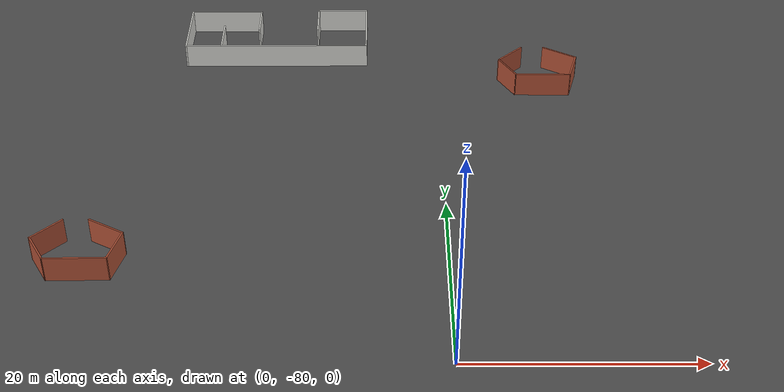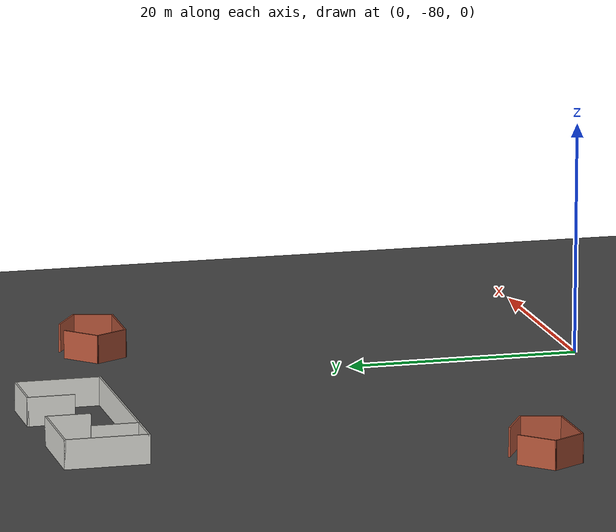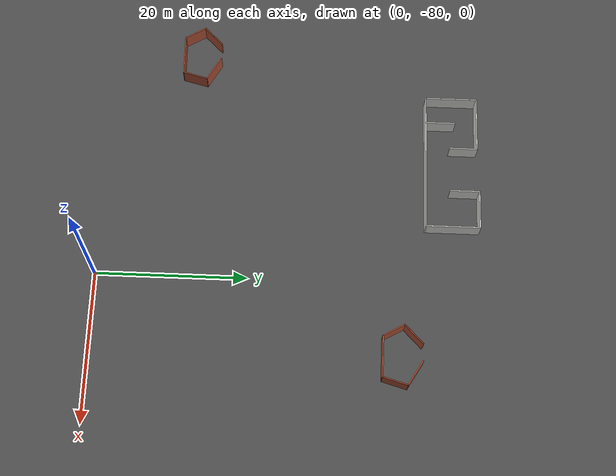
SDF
<sdf version="1.6">
 <world name="default">
  <model name="ground_plane">
   <static>1</static>
   <link name="link">
    <collision name="collision">
     <geometry><plane><normal>0 0 1</normal><size>250 250</size></plane></geometry>
     <surface><friction><ode><mu>100</mu><mu2>50</mu2></ode></friction></surface>
    </collision>
    <visual name="visual">
     <cast_shadows>0</cast_shadows>
     <geometry><plane><normal>0 0 1</normal><size>250 250</size></plane></geometry>
     <material>
      <script><uri>file://media/materials/scripts/gazebo.material</uri><name>Gazebo/Grey</name></script>
     </material>
    </visual>
   </link>
  </model>
  <model name="concrete_room2">
   <pose>-16.6663 -33.2911 0 0 -0 0</pose>
   <link name="Wall_61">
    <collision name="Wall_61_Collision">
     <geometry><box><size>5.25 0.15 2.5</size></box></geometry>
     <pose>0 0 1.25 0 -0 0</pose>
    </collision>
    <visual name="Wall_61_Visual">
     <pose>0 0 1.25 0 -0 0</pose>
     <geometry><box><size>5.25 0.15 2.5</size></box></geometry>
     <material>
      <script><uri>file://media/materials/scripts/gazebo.material</uri><name>Gazebo/CeilingTiled</name></script>
      <ambient>1 1 1 1</ambient>
     </material>
     <meta><layer>0</layer></meta>
    </visual>
    <pose>6.75 3.55 0 0 -0 0</pose>
   </link>
   <link name="Wall_62">
    <collision name="Wall_62_Collision">
     <geometry><box><size>7.25 0.15 2.5</size></box></geometry>
     <pose>0 0 1.25 0 -0 0</pose>
    </collision>
    <visual name="Wall_62_Visual">
     <pose>0 0 1.25 0 -0 0</pose>
     <geometry><box><size>7.25 0.15 2.5</size></box></geometry>
     <material>
      <script><uri>file://media/materials/scripts/gazebo.material</uri><name>Gazebo/CeilingTiled</name></script>
      <ambient>1 1 1 1</ambient>
     </material>
     <meta><layer>0</layer></meta>
    </visual>
    <pose>9.3 0 0 0 0 -1.5708</pose>
   </link>
   <link name="Wall_63">
    <collision name="Wall_63_Collision">
     <geometry><box><size>18.75 0.15 2.5</size></box></geometry>
     <pose>0 0 1.25 0 -0 0</pose>
    </collision>
    <visual name="Wall_63_Visual">
     <pose>0 0 1.25 0 -0 0</pose>
     <geometry><box><size>18.75 0.15 2.5</size></box></geometry>
     <material>
      <script><uri>file://media/materials/scripts/gazebo.material</uri><name>Gazebo/CeilingTiled</name></script>
      <ambient>1 1 1 1</ambient>
     </material>
     <meta><layer>0</layer></meta>
    </visual>
    <pose>0 -3.55 0 0 -0 3.14159</pose>
   </link>
   <link name="Wall_64">
    <collision name="Wall_64_Collision">
     <geometry><box><size>7 0.15 2.5</size></box></geometry>
     <pose>0 0 1.25 0 -0 0</pose>
    </collision>
    <visual name="Wall_64_Visual">
     <pose>0 0 1.25 0 -0 0</pose>
     <geometry><box><size>7 0.15 2.5</size></box></geometry>
     <material>
      <script><uri>file://media/materials/scripts/gazebo.material</uri><name>Gazebo/CeilingTiled</name></script>
      <ambient>1 1 1 1</ambient>
     </material>
     <meta><layer>0</layer></meta>
    </visual>
    <pose>-9.3 -0.125 0 0 -0 1.5708</pose>
   </link>
   <link name="Wall_65">
    <collision name="Wall_65_Collision">
     <geometry><box><size>7.5 0.15 2.5</size></box></geometry>
     <pose>0 0 1.25 0 -0 0</pose>
    </collision>
    <visual name="Wall_65_Visual">
     <pose>0 0 1.25 0 -0 0</pose>
     <geometry><box><size>7.5 0.15 2.5</size></box></geometry>
     <material>
      <script><uri>file://media/materials/scripts/gazebo.material</uri><name>Gazebo/CeilingTiled</name></script>
      <ambient>1 1 1 1</ambient>
     </material>
     <meta><layer>0</layer></meta>
    </visual>
    <pose>-5.625 3.3 0 0 -0 0</pose>
   </link>
   <link name="Wall_66">
    <collision name="Wall_66_Collision">
     <geometry><box><size>3.75 0.15 2.5</size></box></geometry>
     <pose>0 0 1.25 0 -0 0</pose>
    </collision>
    <visual name="Wall_66_Visual">
     <pose>0 0 1.25 0 -0 0</pose>
     <geometry><box><size>3.75 0.15 2.5</size></box></geometry>
     <material>
      <script><uri>file://media/materials/scripts/gazebo.material</uri><name>Gazebo/CeilingTiled</name></script>
      <ambient>1 1 1 1</ambient>
     </material>
     <meta><layer>0</layer></meta>
    </visual>
    <pose>-1.95 1.5 0 0 0 -1.5708</pose>
   </link>
   <link name="Wall_70">
    <collision name="Wall_70_Collision">
     <geometry><box><size>4 0.15 2.5</size></box></geometry>
     <pose>0 0 1.25 0 -0 0</pose>
    </collision>
    <visual name="Wall_70_Visual">
     <pose>0 0 1.25 0 -0 0</pose>
     <geometry><box><size>4 0.15 2.5</size></box></geometry>
     <material>
      <script><uri>file://media/materials/scripts/gazebo.material</uri><name>Gazebo/CeilingTiled</name></script>
      <ambient>1 1 1 1</ambient>
     </material>
     <meta><layer>0</layer></meta>
    </visual>
    <pose>4.2 1.625 0 0 0 -1.5708</pose>
   </link>
   <link name="Wall_72">
    <collision name="Wall_72_Collision">
     <geometry><box><size>4 0.15 2.5</size></box></geometry>
     <pose>0 0 1.25 0 -0 0</pose>
    </collision>
    <visual name="Wall_72_Visual">
     <pose>0 0 1.25 0 -0 0</pose>
     <geometry><box><size>4 0.15 2.5</size></box></geometry>
     <material>
      <script><uri>file://media/materials/scripts/gazebo.material</uri><name>Gazebo/CeilingTiled</name></script>
      <ambient>1 1 1 1</ambient>
     </material>
     <meta><layer>0</layer></meta>
    </visual>
    <pose>-5.65005 -1.59593 0 0 -0 1.5708</pose>
   </link>
   <static>1</static>
  </model>
  <model name="brick_room1_clone_clone_clone">
   <pose>-31.7858 -67.6312 0 0 0 -3.13253</pose>
   <link name="Wall_11">
    <collision name="Wall_11_Collision">
     <geometry><box><size>3.25 0.15 2.5</size></box></geometry>
     <pose>0 0 1.25 0 -0 0</pose>
    </collision>
    <visual name="Wall_11_Visual">
     <pose>0 0 1.25 0 -0 0</pose>
     <geometry><box><size>3.25 0.15 2.5</size></box></geometry>
     <material>
      <script><uri>file://media/materials/scripts/gazebo.material</uri><name>Gazebo/Bricks</name></script>
      <ambient>1 1 1 1</ambient>
     </material>
    </visual>
    <pose>3.12132 1.19483 0 0 0 -1.0472</pose>
   </link>
   <link name="Wall_12">
    <collision name="Wall_12_Collision">
     <geometry><box><size>3.5 0.15 2.5</size></box></geometry>
     <pose>0 0 1.25 0 -0 0</pose>
    </collision>
    <visual name="Wall_12_Visual">
     <pose>0 0 1.25 0 -0 0</pose>
     <geometry><box><size>3.5 0.15 2.5</size></box></geometry>
     <material>
      <script><uri>file://media/materials/scripts/gazebo.material</uri><name>Gazebo/Bricks</name></script>
      <ambient>1 1 1 1</ambient>
     </material>
    </visual>
    <pose>2.71192 -1.33192 0 0 0 -2.35619</pose>
   </link>
   <link name="Wall_7">
    <collision name="Wall_7_Collision">
     <geometry><box><size>5.52935 0.15 2.5</size></box></geometry>
     <pose>0 0 1.25 0 -0 0</pose>
    </collision>
    <visual name="Wall_7_Visual">
     <pose>0 0 1.25 0 -0 0</pose>
     <geometry><box><size>5.52935 0.15 2.5</size></box></geometry>
     <material>
      <script><uri>file://media/materials/scripts/gazebo.material</uri><name>Gazebo/Bricks</name></script>
      <ambient>1 1 1 1</ambient>
     </material>
    </visual>
    <pose>-0.343285 2.51793 0 0 0 -3.13444</pose>
   </link>
   <link name="Wall_8">
    <collision name="Wall_8_Collision">
     <geometry><box><size>3.5 0.15 2.5</size></box></geometry>
     <pose>0 0 1.25 0 -0 0</pose>
    </collision>
    <visual name="Wall_8_Visual">
     <pose>0 0 1.25 0 -0 0</pose>
     <geometry><box><size>3.5 0.15 2.5</size></box></geometry>
     <material>
      <script><uri>file://media/materials/scripts/gazebo.material</uri><name>Gazebo/Bricks</name></script>
      <ambient>1 1 1 1</ambient>
     </material>
    </visual>
    <pose>-3.46641 0.880761 0 0 0 -1.8326</pose>
   </link>
   <link name="Wall_9">
    <collision name="Wall_9_Collision">
     <geometry><box><size>3.75 0.15 2.5</size></box></geometry>
     <pose>0 0 1.25 0 -0 0</pose>
    </collision>
    <visual name="Wall_9_Visual">
     <pose>0 0 1.25 0 -0 0</pose>
     <geometry><box><size>3.75 0.15 2.5</size></box></geometry>
     <material>
      <script><uri>file://media/materials/scripts/gazebo.material</uri><name>Gazebo/Bricks</name></script>
      <ambient>1 1 1 1</ambient>
     </material>
    </visual>
    <pose>-2.34109 -1.63716 0 0 0 -0.523599</pose>
   </link>
   <static>1</static>
  </model>
  <model name="brick_room1_clone_clone_clone_0">
   <pose>10.0616 -39.7883 0 0 -0 3.12342</pose>
   <link name="Wall_11">
    <collision name="Wall_11_Collision">
     <geometry><box><size>3.25 0.15 2.5</size></box></geometry>
     <pose>0 0 1.25 0 -0 0</pose>
    </collision>
    <visual name="Wall_11_Visual">
     <pose>0 0 1.25 0 -0 0</pose>
     <geometry><box><size>3.25 0.15 2.5</size></box></geometry>
     <material>
      <script><uri>file://media/materials/scripts/gazebo.material</uri><name>Gazebo/Bricks</name></script>
      <ambient>1 1 1 1</ambient>
     </material>
    </visual>
    <pose>3.12132 1.19483 0 0 0 -1.0472</pose>
   </link>
   <link name="Wall_12">
    <collision name="Wall_12_Collision">
     <geometry><box><size>3.5 0.15 2.5</size></box></geometry>
     <pose>0 0 1.25 0 -0 0</pose>
    </collision>
    <visual name="Wall_12_Visual">
     <pose>0 0 1.25 0 -0 0</pose>
     <geometry><box><size>3.5 0.15 2.5</size></box></geometry>
     <material>
      <script><uri>file://media/materials/scripts/gazebo.material</uri><name>Gazebo/Bricks</name></script>
      <ambient>1 1 1 1</ambient>
     </material>
    </visual>
    <pose>2.71192 -1.33192 0 0 0 -2.35619</pose>
   </link>
   <link name="Wall_7">
    <collision name="Wall_7_Collision">
     <geometry><box><size>5.52935 0.15 2.5</size></box></geometry>
     <pose>0 0 1.25 0 -0 0</pose>
    </collision>
    <visual name="Wall_7_Visual">
     <pose>0 0 1.25 0 -0 0</pose>
     <geometry><box><size>5.52935 0.15 2.5</size></box></geometry>
     <material>
      <script><uri>file://media/materials/scripts/gazebo.material</uri><name>Gazebo/Bricks</name></script>
      <ambient>1 1 1 1</ambient>
     </material>
    </visual>
    <pose>-0.343285 2.51793 0 0 0 -3.13444</pose>
   </link>
   <link name="Wall_8">
    <collision name="Wall_8_Collision">
     <geometry><box><size>3.5 0.15 2.5</size></box></geometry>
     <pose>0 0 1.25 0 -0 0</pose>
    </collision>
    <visual name="Wall_8_Visual">
     <pose>0 0 1.25 0 -0 0</pose>
     <geometry><box><size>3.5 0.15 2.5</size></box></geometry>
     <material>
      <script><uri>file://media/materials/scripts/gazebo.material</uri><name>Gazebo/Bricks</name></script>
      <ambient>1 1 1 1</ambient>
     </material>
    </visual>
    <pose>-3.46641 0.880761 0 0 0 -1.8326</pose>
   </link>
   <link name="Wall_9">
    <collision name="Wall_9_Collision">
     <geometry><box><size>3.75 0.15 2.5</size></box></geometry>
     <pose>0 0 1.25 0 -0 0</pose>
    </collision>
    <visual name="Wall_9_Visual">
     <pose>0 0 1.25 0 -0 0</pose>
     <geometry><box><size>3.75 0.15 2.5</size></box></geometry>
     <material>
      <script><uri>file://media/materials/scripts/gazebo.material</uri><name>Gazebo/Bricks</name></script>
      <ambient>1 1 1 1</ambient>
     </material>
    </visual>
    <pose>-2.34109 -1.63716 0 0 0 -0.523599</pose>
   </link>
   <static>1</static>
  </model>
  <model name="asphalt_plane">
   <static>1</static>
   <link name="link">
    <collision name="collision"><geometry><box><size>250 250 0.1</size></box></geometry></collision>
    <visual name="visual">
     <cast_shadows>0</cast_shadows>
     <geometry><box><size>250 250 0.1</size></box></geometry>
     <material>
      <script>
       <uri>model://asphalt_plane/materials/scripts</uri>
       <uri>model://asphalt_plane/materials/textures</uri>
       <name>vrc/asphalt</name>
      </script>
     </material>
    </visual>
   </link>
   <pose>15.141 -2.59476 0 0 -0 0</pose>
  </model>
 </world>
</sdf>
